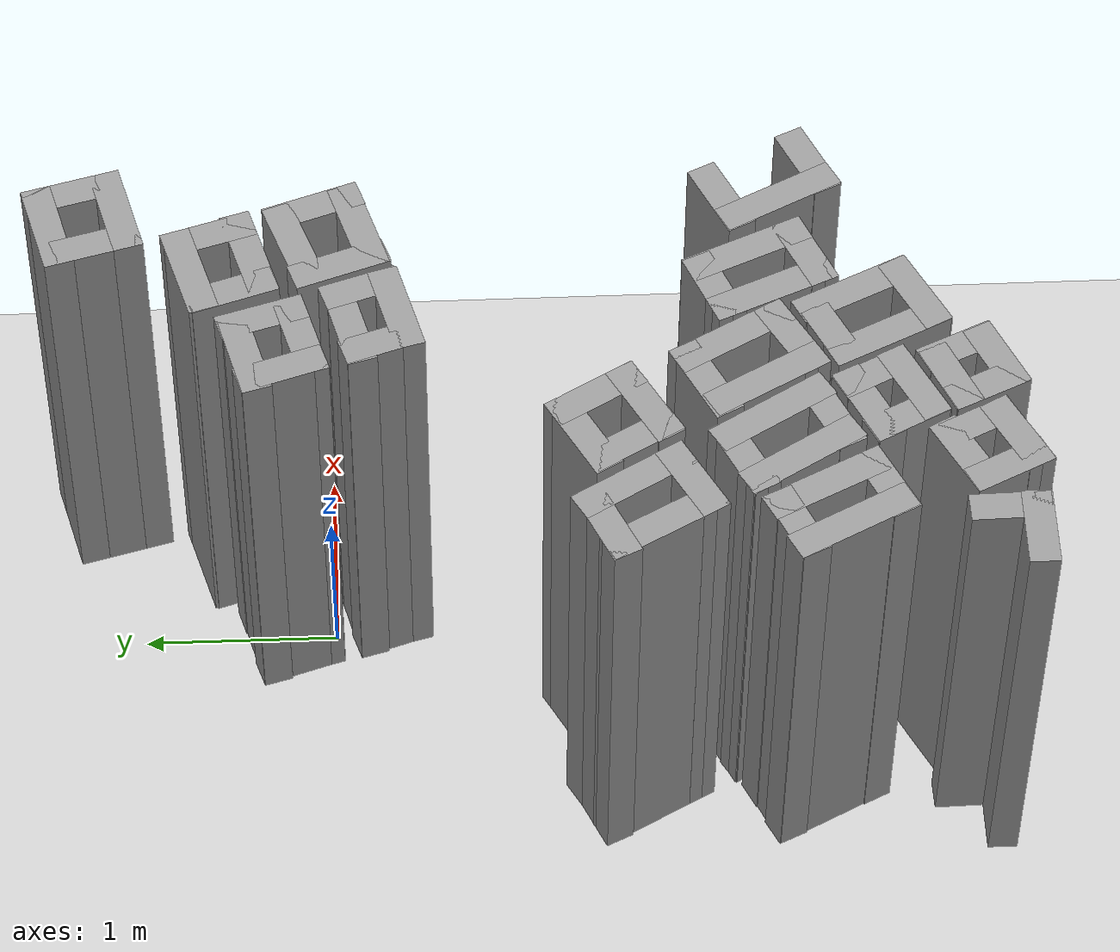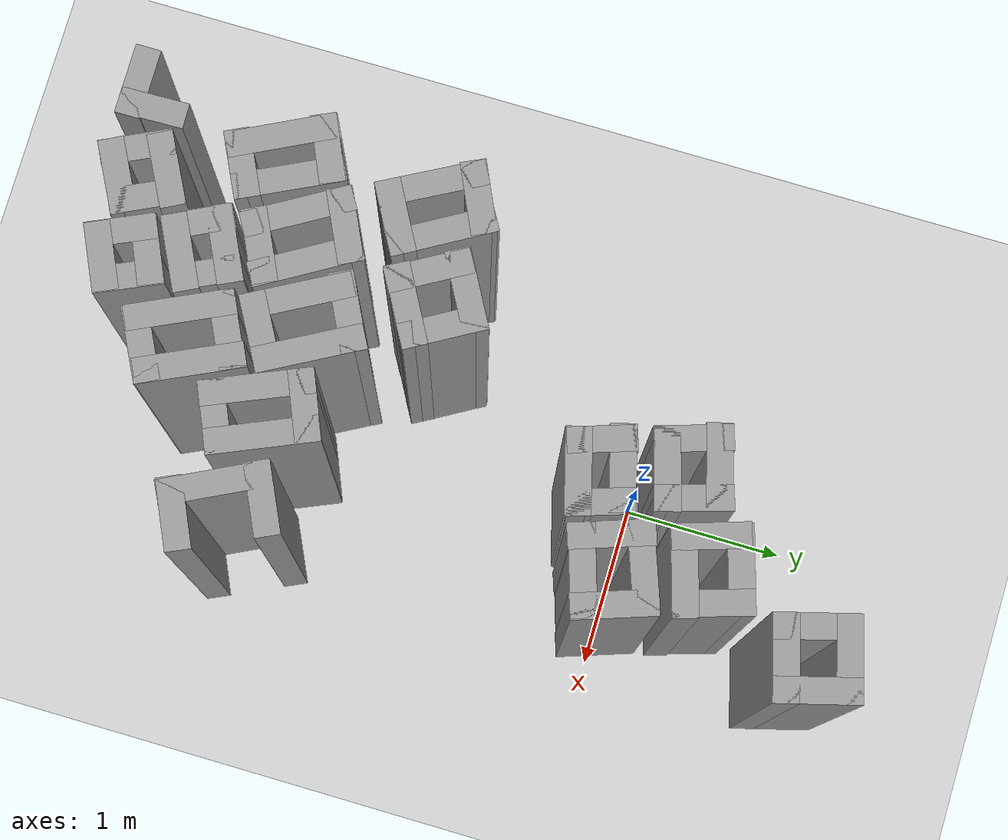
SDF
<sdf version="1.7">
 <world name="default">
  <include><uri>model://sun</uri></include>
  <include><uri>model://ground_plane</uri></include>
  <model name="iitj">
   <pose>-3.03973 -1.21048 0 0 -0 0</pose>
   <link name="Wall_212">
    <collision name="Wall_212_Collision">
     <geometry><box><size>0.648903 0.15 2.5</size></box></geometry>
     <pose>0 0 1.25 0 -0 0</pose>
    </collision>
    <visual name="Wall_212_Visual">
     <pose>0 0 1.25 0 -0 0</pose>
     <geometry><box><size>0.648903 0.15 2.5</size></box></geometry>
     <material>
      <script><uri>file://media/materials/scripts/gazebo.material</uri><name>Gazebo/Grey</name></script>
      <ambient>1 1 1 1</ambient>
     </material>
     <meta><layer>0</layer></meta>
    </visual>
    <pose>1.88601 -1.28038 0 0 -0 -1.10363</pose>
   </link>
   <link name="Wall_213">
    <collision name="Wall_213_Collision">
     <geometry><box><size>0.402633 0.15 2.5</size></box></geometry>
     <pose>0 0 1.25 0 -0 0</pose>
    </collision>
    <visual name="Wall_213_Visual">
     <pose>0 0 1.25 0 -0 0</pose>
     <geometry><box><size>0.402633 0.15 2.5</size></box></geometry>
     <material>
      <script><uri>file://media/materials/scripts/gazebo.material</uri><name>Gazebo/Grey</name></script>
      <ambient>1 1 1 1</ambient>
     </material>
     <meta><layer>0</layer></meta>
    </visual>
    <pose>2.10732 -1.45252 0 0 -0 0.452359</pose>
   </link>
   <link name="Wall_214">
    <collision name="Wall_214_Collision">
     <geometry><box><size>0.644621 0.15 2.5</size></box></geometry>
     <pose>0 0 1.25 0 -0 0</pose>
    </collision>
    <visual name="Wall_214_Visual">
     <pose>0 0 1.25 0 -0 0</pose>
     <geometry><box><size>0.644621 0.15 2.5</size></box></geometry>
     <material>
      <script><uri>file://media/materials/scripts/gazebo.material</uri><name>Gazebo/Grey</name></script>
      <ambient>1 1 1 1</ambient>
     </material>
     <meta><layer>0</layer></meta>
    </visual>
    <pose>2.11182 -1.17538 0 0 -0 2.02774</pose>
   </link>
   <link name="Wall_215">
    <collision name="Wall_215_Collision">
     <geometry><box><size>0.401634 0.15 2.5</size></box></geometry>
     <pose>0 0 1.25 0 -0 0</pose>
    </collision>
    <visual name="Wall_215_Visual">
     <pose>0 0 1.25 0 -0 0</pose>
     <geometry><box><size>0.401634 0.15 2.5</size></box></geometry>
     <material>
      <script><uri>file://media/materials/scripts/gazebo.material</uri><name>Gazebo/Grey</name></script>
      <ambient>1 1 1 1</ambient>
     </material>
     <meta><layer>0</layer></meta>
    </visual>
    <pose>1.88819 -1.01365 0 0 -0 -2.71458</pose>
   </link>
   <link name="Wall_217">
    <collision name="Wall_217_Collision">
     <geometry><box><size>0.648669 0.15 2.5</size></box></geometry>
     <pose>0 0 1.25 0 -0 0</pose>
    </collision>
    <visual name="Wall_217_Visual">
     <pose>0 0 1.25 0 -0 0</pose>
     <geometry><box><size>0.648669 0.15 2.5</size></box></geometry>
     <material>
      <script><uri>file://media/materials/scripts/gazebo.material</uri><name>Gazebo/Grey</name></script>
      <ambient>1 1 1 1</ambient>
     </material>
     <meta><layer>0</layer></meta>
    </visual>
    <pose>2.28325 -1.06908 0 0 -0 -1.035</pose>
   </link>
   <link name="Wall_218">
    <collision name="Wall_218_Collision">
     <geometry><box><size>0.43838 0.15 2.5</size></box></geometry>
     <pose>0 0 1.25 0 -0 0</pose>
    </collision>
    <visual name="Wall_218_Visual">
     <pose>0 0 1.25 0 -0 0</pose>
     <geometry><box><size>0.43838 0.15 2.5</size></box></geometry>
     <material>
      <script><uri>file://media/materials/scripts/gazebo.material</uri><name>Gazebo/Grey</name></script>
      <ambient>1 1 1 1</ambient>
     </material>
     <meta><layer>0</layer></meta>
    </visual>
    <pose>2.53122 -1.22111 0 0 -0 0.447258</pose>
   </link>
   <link name="Wall_219">
    <collision name="Wall_219_Collision">
     <geometry><box><size>0.648669 0.15 2.5</size></box></geometry>
     <pose>0 0 1.25 0 -0 0</pose>
    </collision>
    <visual name="Wall_219_Visual">
     <pose>0 0 1.25 0 -0 0</pose>
     <geometry><box><size>0.648669 0.15 2.5</size></box></geometry>
     <material>
      <script><uri>file://media/materials/scripts/gazebo.material</uri><name>Gazebo/Grey</name></script>
      <ambient>1 1 1 1</ambient>
     </material>
     <meta><layer>0</layer></meta>
    </visual>
    <pose>2.54326 -0.94436 0 0 -0 2.1066</pose>
   </link>
   <link name="Wall_220">
    <collision name="Wall_220_Collision">
     <geometry><box><size>0.43838 0.15 2.5</size></box></geometry>
     <pose>0 0 1.25 0 -0 0</pose>
    </collision>
    <visual name="Wall_220_Visual">
     <pose>0 0 1.25 0 -0 0</pose>
     <geometry><box><size>0.43838 0.15 2.5</size></box></geometry>
     <material>
      <script><uri>file://media/materials/scripts/gazebo.material</uri><name>Gazebo/Grey</name></script>
      <ambient>1 1 1 1</ambient>
     </material>
     <meta><layer>0</layer></meta>
    </visual>
    <pose>2.28596 -0.792329 0 0 -0 -2.69434</pose>
   </link>
   <link name="Wall_222">
    <collision name="Wall_222_Collision">
     <geometry><box><size>0.640461 0.15 2.5</size></box></geometry>
     <pose>0 0 1.25 0 -0 0</pose>
    </collision>
    <visual name="Wall_222_Visual">
     <pose>0 0 1.25 0 -0 0</pose>
     <geometry><box><size>0.640461 0.15 2.5</size></box></geometry>
     <material>
      <script><uri>file://media/materials/scripts/gazebo.material</uri><name>Gazebo/Grey</name></script>
      <ambient>1 1 1 1</ambient>
     </material>
     <meta><layer>0</layer></meta>
    </visual>
    <pose>2.74712 -0.931314 0 0 -0 -1.06854</pose>
   </link>
   <link name="Wall_223">
    <collision name="Wall_223_Collision">
     <geometry><box><size>0.456014 0.15 2.5</size></box></geometry>
     <pose>0 0 1.25 0 -0 0</pose>
    </collision>
    <visual name="Wall_223_Visual">
     <pose>0 0 1.25 0 -0 0</pose>
     <geometry><box><size>0.456014 0.15 2.5</size></box></geometry>
     <material>
      <script><uri>file://media/materials/scripts/gazebo.material</uri><name>Gazebo/Grey</name></script>
      <ambient>1 1 1 1</ambient>
     </material>
     <meta><layer>0</layer></meta>
    </visual>
    <pose>2.99878 -1.07168 0 0 -0 0.509162</pose>
   </link>
   <link name="Wall_224">
    <collision name="Wall_224_Collision">
     <geometry><box><size>0.640461 0.15 2.5</size></box></geometry>
     <pose>0 0 1.25 0 -0 0</pose>
    </collision>
    <visual name="Wall_224_Visual">
     <pose>0 0 1.25 0 -0 0</pose>
     <geometry><box><size>0.640461 0.15 2.5</size></box></geometry>
     <material>
      <script><uri>file://media/materials/scripts/gazebo.material</uri><name>Gazebo/Grey</name></script>
      <ambient>1 1 1 1</ambient>
     </material>
     <meta><layer>0</layer></meta>
    </visual>
    <pose>3.01432 -0.782149 0 0 -0 2.07305</pose>
   </link>
   <link name="Wall_225">
    <collision name="Wall_225_Collision">
     <geometry><box><size>0.465335 0.15 2.5</size></box></geometry>
     <pose>0 0 1.25 0 -0 0</pose>
    </collision>
    <visual name="Wall_225_Visual">
     <pose>0 0 1.25 0 -0 0</pose>
     <geometry><box><size>0.465335 0.15 2.5</size></box></geometry>
     <material>
      <script><uri>file://media/materials/scripts/gazebo.material</uri><name>Gazebo/Grey</name></script>
      <ambient>1 1 1 1</ambient>
     </material>
     <meta><layer>0</layer></meta>
    </visual>
    <pose>2.75548 -0.638195 0 0 -0 -2.67454</pose>
   </link>
   <link name="Wall_234">
    <collision name="Wall_234_Collision">
     <geometry><box><size>0.636183 0.15 2.5</size></box></geometry>
     <pose>0 0 1.25 0 -0 0</pose>
    </collision>
    <visual name="Wall_234_Visual">
     <pose>0 0 1.25 0 -0 0</pose>
     <geometry><box><size>0.636183 0.15 2.5</size></box></geometry>
     <material>
      <script><uri>file://media/materials/scripts/gazebo.material</uri><name>Gazebo/Grey</name></script>
      <ambient>1 1 1 1</ambient>
     </material>
     <meta><layer>0</layer></meta>
    </visual>
    <pose>1.91748 -0.392397 0 0 -0 2.06742</pose>
   </link>
   <link name="Wall_235">
    <collision name="Wall_235_Collision">
     <geometry><box><size>0.428247 0.15 2.5</size></box></geometry>
     <pose>0 0 1.25 0 -0 0</pose>
    </collision>
    <visual name="Wall_235_Visual">
     <pose>0 0 1.25 0 -0 0</pose>
     <geometry><box><size>0.428247 0.15 2.5</size></box></geometry>
     <material>
      <script><uri>file://media/materials/scripts/gazebo.material</uri><name>Gazebo/Grey</name></script>
      <ambient>1 1 1 1</ambient>
     </material>
     <meta><layer>0</layer></meta>
    </visual>
    <pose>1.92063 -0.120136 0 0 -0 0.434262</pose>
   </link>
   <link name="Wall_236">
    <collision name="Wall_236_Collision">
     <geometry><box><size>0.627085 0.15 2.5</size></box></geometry>
     <pose>0 0 1.25 0 -0 0</pose>
    </collision>
    <visual name="Wall_236_Visual">
     <pose>0 0 1.25 0 -0 0</pose>
     <geometry><box><size>0.627085 0.15 2.5</size></box></geometry>
     <material>
      <script><uri>file://media/materials/scripts/gazebo.material</uri><name>Gazebo/Grey</name></script>
      <ambient>1 1 1 1</ambient>
     </material>
     <meta><layer>0</layer></meta>
    </visual>
    <pose>2.16628 -0.260845 0 0 -0 -1.04636</pose>
   </link>
   <link name="Wall_237">
    <collision name="Wall_237_Collision">
     <geometry><box><size>0.438062 0.15 2.5</size></box></geometry>
     <pose>0 0 1.25 0 -0 0</pose>
    </collision>
    <visual name="Wall_237_Visual">
     <pose>0 0 1.25 0 -0 0</pose>
     <geometry><box><size>0.438062 0.15 2.5</size></box></geometry>
     <material>
      <script><uri>file://media/materials/scripts/gazebo.material</uri><name>Gazebo/Grey</name></script>
      <ambient>1 1 1 1</ambient>
     </material>
     <meta><layer>0</layer></meta>
    </visual>
    <pose>2.15952 -0.536726 0 0 -0 -2.63886</pose>
   </link>
   <link name="Wall_239">
    <collision name="Wall_239_Collision">
     <geometry><box><size>0.5 0.15 2.5</size></box></geometry>
     <pose>0 0 1.25 0 -0 0</pose>
    </collision>
    <visual name="Wall_239_Visual">
     <pose>0 0 1.25 0 -0 0</pose>
     <geometry><box><size>0.5 0.15 2.5</size></box></geometry>
     <material>
      <script><uri>file://media/materials/scripts/gazebo.material</uri><name>Gazebo/Grey</name></script>
      <ambient>1 1 1 1</ambient>
     </material>
     <meta><layer>0</layer></meta>
    </visual>
    <pose>2.40146 -0.266066 0 0 -0 -1.0472</pose>
   </link>
   <link name="Wall_240">
    <collision name="Wall_240_Collision">
     <geometry><box><size>0.486684 0.15 2.5</size></box></geometry>
     <pose>0 0 1.25 0 -0 0</pose>
    </collision>
    <visual name="Wall_240_Visual">
     <pose>0 0 1.25 0 -0 0</pose>
     <geometry><box><size>0.486684 0.15 2.5</size></box></geometry>
     <material>
      <script><uri>file://media/materials/scripts/gazebo.material</uri><name>Gazebo/Grey</name></script>
      <ambient>1 1 1 1</ambient>
     </material>
     <meta><layer>0</layer></meta>
    </visual>
    <pose>2.6281 -0.336331 0 0 -0 0.503946</pose>
   </link>
   <link name="Wall_241">
    <collision name="Wall_241_Collision">
     <geometry><box><size>0.5 0.15 2.5</size></box></geometry>
     <pose>0 0 1.25 0 -0 0</pose>
    </collision>
    <visual name="Wall_241_Visual">
     <pose>0 0 1.25 0 -0 0</pose>
     <geometry><box><size>0.5 0.15 2.5</size></box></geometry>
     <material>
      <script><uri>file://media/materials/scripts/gazebo.material</uri><name>Gazebo/Grey</name></script>
      <ambient>1 1 1 1</ambient>
     </material>
     <meta><layer>0</layer></meta>
    </visual>
    <pose>2.68801 -0.103487 0 0 -0 2.0944</pose>
   </link>
   <link name="Wall_242">
    <collision name="Wall_242_Collision">
     <geometry><box><size>0.486684 0.15 2.5</size></box></geometry>
     <pose>0 0 1.25 0 -0 0</pose>
    </collision>
    <visual name="Wall_242_Visual">
     <pose>0 0 1.25 0 -0 0</pose>
     <geometry><box><size>0.486684 0.15 2.5</size></box></geometry>
     <material>
      <script><uri>file://media/materials/scripts/gazebo.material</uri><name>Gazebo/Grey</name></script>
      <ambient>1 1 1 1</ambient>
     </material>
     <meta><layer>0</layer></meta>
    </visual>
    <pose>2.4531 -0.033222 0 0 -0 -2.63765</pose>
   </link>
   <link name="Wall_395">
    <collision name="Wall_395_Collision">
     <geometry><box><size>0.446457 0.15 2.5</size></box></geometry>
     <pose>0 0 1.25 0 -0 0</pose>
    </collision>
    <visual name="Wall_395_Visual">
     <pose>0 0 1.25 0 -0 0</pose>
     <geometry><box><size>0.446457 0.15 2.5</size></box></geometry>
     <material>
      <script><uri>file://media/materials/scripts/gazebo.material</uri><name>Gazebo/Grey</name></script>
      <ambient>1 1 1 1</ambient>
     </material>
     <meta><layer>0</layer></meta>
    </visual>
    <pose>2.89962 1.40822 0 0 -0 -1.25857</pose>
   </link>
   <link name="Wall_396">
    <collision name="Wall_396_Collision">
     <geometry><box><size>0.47935 0.15 2.5</size></box></geometry>
     <pose>0 0 1.25 0 -0 0</pose>
    </collision>
    <visual name="Wall_396_Visual">
     <pose>0 0 1.25 0 -0 0</pose>
     <geometry><box><size>0.47935 0.15 2.5</size></box></geometry>
     <material>
      <script><uri>file://media/materials/scripts/gazebo.material</uri><name>Gazebo/Grey</name></script>
      <ambient>1 1 1 1</ambient>
     </material>
     <meta><layer>0</layer></meta>
    </visual>
    <pose>3.10354 1.31224 0 0 -0 0.277289</pose>
   </link>
   <link name="Wall_397">
    <collision name="Wall_397_Collision">
     <geometry><box><size>0.444384 0.15 2.5</size></box></geometry>
     <pose>0 0 1.25 0 -0 0</pose>
    </collision>
    <visual name="Wall_397_Visual">
     <pose>0 0 1.25 0 -0 0</pose>
     <geometry><box><size>0.444384 0.15 2.5</size></box></geometry>
     <material>
      <script><uri>file://media/materials/scripts/gazebo.material</uri><name>Gazebo/Grey</name></script>
      <ambient>1 1 1 1</ambient>
     </material>
     <meta><layer>0</layer></meta>
    </visual>
    <pose>3.21989 1.49838 0 0 -0 1.8604</pose>
   </link>
   <link name="Wall_398">
    <collision name="Wall_398_Collision">
     <geometry><box><size>0.492826 0.15 2.5</size></box></geometry>
     <pose>0 0 1.25 0 -0 0</pose>
    </collision>
    <visual name="Wall_398_Visual">
     <pose>0 0 1.25 0 -0 0</pose>
     <geometry><box><size>0.492826 0.15 2.5</size></box></geometry>
     <material>
      <script><uri>file://media/materials/scripts/gazebo.material</uri><name>Gazebo/Grey</name></script>
      <ambient>1 1 1 1</ambient>
     </material>
     <meta><layer>0</layer></meta>
    </visual>
    <pose>3.01248 1.58737 0 0 -0 -2.87547</pose>
   </link>
   <link name="Wall_401">
    <collision name="Wall_401_Collision">
     <geometry><box><size>0.395414 0.15 2.5</size></box></geometry>
     <pose>0 0 1.25 0 -0 0</pose>
    </collision>
    <visual name="Wall_401_Visual">
     <pose>0 0 1.25 0 -0 0</pose>
     <geometry><box><size>0.395414 0.15 2.5</size></box></geometry>
     <material>
      <script><uri>file://media/materials/scripts/gazebo.material</uri><name>Gazebo/Grey</name></script>
      <ambient>1 1 1 1</ambient>
     </material>
     <meta><layer>0</layer></meta>
    </visual>
    <pose>3.04627 0.922097 0 0 -0 -1.25338</pose>
   </link>
   <link name="Wall_402">
    <collision name="Wall_402_Collision">
     <geometry><box><size>0.5 0.15 2.5</size></box></geometry>
     <pose>0 0 1.25 0 -0 0</pose>
    </collision>
    <visual name="Wall_402_Visual">
     <pose>0 0 1.25 0 -0 0</pose>
     <geometry><box><size>0.5 0.15 2.5</size></box></geometry>
     <material>
      <script><uri>file://media/materials/scripts/gazebo.material</uri><name>Gazebo/Grey</name></script>
      <ambient>1 1 1 1</ambient>
     </material>
     <meta><layer>0</layer></meta>
    </visual>
    <pose>3.25361 0.843818 0 0 -0 0.261799</pose>
   </link>
   <link name="Wall_403">
    <collision name="Wall_403_Collision">
     <geometry><box><size>0.395414 0.15 2.5</size></box></geometry>
     <pose>0 0 1.25 0 -0 0</pose>
    </collision>
    <visual name="Wall_403_Visual">
     <pose>0 0 1.25 0 -0 0</pose>
     <geometry><box><size>0.395414 0.15 2.5</size></box></geometry>
     <material>
      <script><uri>file://media/materials/scripts/gazebo.material</uri><name>Gazebo/Grey</name></script>
      <ambient>1 1 1 1</ambient>
     </material>
     <meta><layer>0</layer></meta>
    </visual>
    <pose>3.38435 1.01268 0 0 -0 1.88821</pose>
   </link>
   <link name="Wall_404">
    <collision name="Wall_404_Collision">
     <geometry><box><size>0.5 0.15 2.5</size></box></geometry>
     <pose>0 0 1.25 0 -0 0</pose>
    </collision>
    <visual name="Wall_404_Visual">
     <pose>0 0 1.25 0 -0 0</pose>
     <geometry><box><size>0.5 0.15 2.5</size></box></geometry>
     <material>
      <script><uri>file://media/materials/scripts/gazebo.material</uri><name>Gazebo/Grey</name></script>
      <ambient>1 1 1 1</ambient>
     </material>
     <meta><layer>0</layer></meta>
    </visual>
    <pose>3.17002 1.07697 0 0 -0 -2.87979</pose>
   </link>
   <link name="Wall_406">
    <collision name="Wall_406_Collision">
     <geometry><box><size>0.492752 0.15 2.5</size></box></geometry>
     <pose>0 0 1.25 0 -0 0</pose>
    </collision>
    <visual name="Wall_406_Visual">
     <pose>0 0 1.25 0 -0 0</pose>
     <geometry><box><size>0.492752 0.15 2.5</size></box></geometry>
     <material>
      <script><uri>file://media/materials/scripts/gazebo.material</uri><name>Gazebo/Grey</name></script>
      <ambient>1 1 1 1</ambient>
     </material>
     <meta><layer>0</layer></meta>
    </visual>
    <pose>3.53974 1.11678 0 0 -0 1.90235</pose>
   </link>
   <link name="Wall_407">
    <collision name="Wall_407_Collision">
     <geometry><box><size>0.527821 0.15 2.5</size></box></geometry>
     <pose>0 0 1.25 0 -0 0</pose>
    </collision>
    <visual name="Wall_407_Visual">
     <pose>0 0 1.25 0 -0 0</pose>
     <geometry><box><size>0.527821 0.15 2.5</size></box></geometry>
     <material>
      <script><uri>file://media/materials/scripts/gazebo.material</uri><name>Gazebo/Grey</name></script>
      <ambient>1 1 1 1</ambient>
     </material>
     <meta><layer>0</layer></meta>
    </visual>
    <pose>3.66881 1.33548 0 0 -0 0.343692</pose>
   </link>
   <link name="Wall_408">
    <collision name="Wall_408_Collision">
     <geometry><box><size>0.492752 0.15 2.5</size></box></geometry>
     <pose>0 0 1.25 0 -0 0</pose>
    </collision>
    <visual name="Wall_408_Visual">
     <pose>0 0 1.25 0 -0 0</pose>
     <geometry><box><size>0.492752 0.15 2.5</size></box></geometry>
     <material>
      <script><uri>file://media/materials/scripts/gazebo.material</uri><name>Gazebo/Grey</name></script>
      <ambient>1 1 1 1</ambient>
     </material>
     <meta><layer>0</layer></meta>
    </visual>
    <pose>3.90946 1.2371 0 0 -0 -1.23924</pose>
   </link>
   <link name="Wall_409">
    <collision name="Wall_409_Collision">
     <geometry><box><size>0.530011 0.15 2.5</size></box></geometry>
     <pose>0 0 1.25 0 -0 0</pose>
    </collision>
    <visual name="Wall_409_Visual">
     <pose>0 0 1.25 0 -0 0</pose>
     <geometry><box><size>0.530011 0.15 2.5</size></box></geometry>
     <material>
      <script><uri>file://media/materials/scripts/gazebo.material</uri><name>Gazebo/Grey</name></script>
      <ambient>1 1 1 1</ambient>
     </material>
     <meta><layer>0</layer></meta>
    </visual>
    <pose>3.77689 1.01839 0 0 -0 -2.83878</pose>
   </link>
   <link name="Wall_411">
    <collision name="Wall_411_Collision">
     <geometry><box><size>0.446303 0.15 2.5</size></box></geometry>
     <pose>0 0 1.25 0 -0 0</pose>
    </collision>
    <visual name="Wall_411_Visual">
     <pose>0 0 1.25 0 -0 0</pose>
     <geometry><box><size>0.446303 0.15 2.5</size></box></geometry>
     <material>
      <script><uri>file://media/materials/scripts/gazebo.material</uri><name>Gazebo/Grey</name></script>
      <ambient>1 1 1 1</ambient>
     </material>
     <meta><layer>0</layer></meta>
    </visual>
    <pose>3.39601 1.64605 0 0 -0 -1.2601</pose>
   </link>
   <link name="Wall_412">
    <collision name="Wall_412_Collision">
     <geometry><box><size>0.517267 0.15 2.5</size></box></geometry>
     <pose>0 0 1.25 0 -0 0</pose>
    </collision>
    <visual name="Wall_412_Visual">
     <pose>0 0 1.25 0 -0 0</pose>
     <geometry><box><size>0.517267 0.15 2.5</size></box></geometry>
     <material>
      <script><uri>file://media/materials/scripts/gazebo.material</uri><name>Gazebo/Grey</name></script>
      <ambient>1 1 1 1</ambient>
     </material>
     <meta><layer>0</layer></meta>
    </visual>
    <pose>3.62433 1.55728 0 0 -0 0.288737</pose>
   </link>
   <link name="Wall_413">
    <collision name="Wall_413_Collision">
     <geometry><box><size>0.459652 0.15 2.5</size></box></geometry>
     <pose>0 0 1.25 0 -0 0</pose>
    </collision>
    <visual name="Wall_413_Visual">
     <pose>0 0 1.25 0 -0 0</pose>
     <geometry><box><size>0.459652 0.15 2.5</size></box></geometry>
     <material>
      <script><uri>file://media/materials/scripts/gazebo.material</uri><name>Gazebo/Grey</name></script>
      <ambient>1 1 1 1</ambient>
     </material>
     <meta><layer>0</layer></meta>
    </visual>
    <pose>3.74807 1.75762 0 0 -0 1.86768</pose>
   </link>
   <link name="Wall_414">
    <collision name="Wall_414_Collision">
     <geometry><box><size>0.517267 0.15 2.5</size></box></geometry>
     <pose>0 0 1.25 0 -0 0</pose>
    </collision>
    <visual name="Wall_414_Visual">
     <pose>0 0 1.25 0 -0 0</pose>
     <geometry><box><size>0.517267 0.15 2.5</size></box></geometry>
     <material>
      <script><uri>file://media/materials/scripts/gazebo.material</uri><name>Gazebo/Grey</name></script>
      <ambient>1 1 1 1</ambient>
     </material>
     <meta><layer>0</layer></meta>
    </visual>
    <pose>3.52675 1.85338 0 0 -0 -2.85286</pose>
   </link>
   <link name="Wall_418">
    <collision name="Wall_418_Collision">
     <geometry><box><size>0.5 0.15 2.5</size></box></geometry>
     <pose>0 0 1.25 0 -0 0</pose>
    </collision>
    <visual name="Wall_418_Visual">
     <pose>0 0 1.25 0 -0 0</pose>
     <geometry><box><size>0.5 0.15 2.5</size></box></geometry>
     <material>
      <script><uri>file://media/materials/scripts/gazebo.material</uri><name>Gazebo/Grey</name></script>
      <ambient>1 1 1 1</ambient>
     </material>
     <meta><layer>0</layer></meta>
    </visual>
    <pose>3.71018 2.3387 0 0 -0 1.8326</pose>
   </link>
   <link name="Wall_419">
    <collision name="Wall_419_Collision">
     <geometry><box><size>0.5 0.15 2.5</size></box></geometry>
     <pose>0 0 1.25 0 -0 0</pose>
    </collision>
    <visual name="Wall_419_Visual">
     <pose>0 0 1.25 0 -0 0</pose>
     <geometry><box><size>0.5 0.15 2.5</size></box></geometry>
     <material>
      <script><uri>file://media/materials/scripts/gazebo.material</uri><name>Gazebo/Grey</name></script>
      <ambient>1 1 1 1</ambient>
     </material>
     <meta><layer>0</layer></meta>
    </visual>
    <pose>3.83392 2.55303 0 0 -0 0.261799</pose>
   </link>
   <link name="Wall_420">
    <collision name="Wall_420_Collision">
     <geometry><box><size>0.5 0.15 2.5</size></box></geometry>
     <pose>0 0 1.25 0 -0 0</pose>
    </collision>
    <visual name="Wall_420_Visual">
     <pose>0 0 1.25 0 -0 0</pose>
     <geometry><box><size>0.5 0.15 2.5</size></box></geometry>
     <material>
      <script><uri>file://media/materials/scripts/gazebo.material</uri><name>Gazebo/Grey</name></script>
      <ambient>1 1 1 1</ambient>
     </material>
     <meta><layer>0</layer></meta>
    </visual>
    <pose>4.04825 2.42929 0 0 -0 -1.309</pose>
   </link>
   <link name="Wall_421">
    <collision name="Wall_421_Collision">
     <geometry><box><size>0.5 0.15 2.5</size></box></geometry>
     <pose>0 0 1.25 0 -0 0</pose>
    </collision>
    <visual name="Wall_421_Visual">
     <pose>0 0 1.25 0 -0 0</pose>
     <geometry><box><size>0.5 0.15 2.5</size></box></geometry>
     <material>
      <script><uri>file://media/materials/scripts/gazebo.material</uri><name>Gazebo/Grey</name></script>
      <ambient>1 1 1 1</ambient>
     </material>
     <meta><layer>0</layer></meta>
    </visual>
    <pose>3.92451 2.21495 0 0 -0 -2.87979</pose>
   </link>
   <link name="Wall_423">
    <collision name="Wall_423_Collision">
     <geometry><box><size>0.42414 0.15 2.5</size></box></geometry>
     <pose>0 0 1.25 0 -0 0</pose>
    </collision>
    <visual name="Wall_423_Visual">
     <pose>0 0 1.25 0 -0 0</pose>
     <geometry><box><size>0.42414 0.15 2.5</size></box></geometry>
     <material>
      <script><uri>file://media/materials/scripts/gazebo.material</uri><name>Gazebo/Grey</name></script>
      <ambient>1 1 1 1</ambient>
     </material>
     <meta><layer>0</layer></meta>
    </visual>
    <pose>2.18511 -2.04686 0 0 -0 2.01943</pose>
   </link>
   <link name="Wall_424">
    <collision name="Wall_424_Collision">
     <geometry><box><size>0.436701 0.15 2.5</size></box></geometry>
     <pose>0 0 1.25 0 -0 0</pose>
    </collision>
    <visual name="Wall_424_Visual">
     <pose>0 0 1.25 0 -0 0</pose>
     <geometry><box><size>0.436701 0.15 2.5</size></box></geometry>
     <material>
      <script><uri>file://media/materials/scripts/gazebo.material</uri><name>Gazebo/Grey</name></script>
      <ambient>1 1 1 1</ambient>
     </material>
     <meta><layer>0</layer></meta>
    </visual>
    <pose>2.25968 -1.84988 0 0 -0 0.482102</pose>
   </link>
   <link name="Wall_425">
    <collision name="Wall_425_Collision">
     <geometry><box><size>0.42414 0.15 2.5</size></box></geometry>
     <pose>0 0 1.25 0 -0 0</pose>
    </collision>
    <visual name="Wall_425_Visual">
     <pose>0 0 1.25 0 -0 0</pose>
     <geometry><box><size>0.42414 0.15 2.5</size></box></geometry>
     <material>
      <script><uri>file://media/materials/scripts/gazebo.material</uri><name>Gazebo/Grey</name></script>
      <ambient>1 1 1 1</ambient>
     </material>
     <meta><layer>0</layer></meta>
    </visual>
    <pose>2.43913 -1.91393 0 0 -0 -1.12217</pose>
   </link>
   <link name="Wall_426">
    <collision name="Wall_426_Collision">
     <geometry><box><size>0.436701 0.15 2.5</size></box></geometry>
     <pose>0 0 1.25 0 -0 0</pose>
    </collision>
    <visual name="Wall_426_Visual">
     <pose>0 0 1.25 0 -0 0</pose>
     <geometry><box><size>0.436701 0.15 2.5</size></box></geometry>
     <material>
      <script><uri>file://media/materials/scripts/gazebo.material</uri><name>Gazebo/Grey</name></script>
      <ambient>1 1 1 1</ambient>
     </material>
     <meta><layer>0</layer></meta>
    </visual>
    <pose>2.37157 -2.1039 0 0 -0 -2.65949</pose>
   </link>
   <link name="Wall_428">
    <collision name="Wall_428_Collision">
     <geometry><box><size>0.402159 0.15 2.5</size></box></geometry>
     <pose>0 0 1.25 0 -0 0</pose>
    </collision>
    <visual name="Wall_428_Visual">
     <pose>0 0 1.25 0 -0 0</pose>
     <geometry><box><size>0.402159 0.15 2.5</size></box></geometry>
     <material>
      <script><uri>file://media/materials/scripts/gazebo.material</uri><name>Gazebo/Grey</name></script>
      <ambient>1 1 1 1</ambient>
     </material>
     <meta><layer>0</layer></meta>
    </visual>
    <pose>2.49685 -1.58214 0 0 -0 -1.11104</pose>
   </link>
   <link name="Wall_429">
    <collision name="Wall_429_Collision">
     <geometry><box><size>0.449198 0.15 2.5</size></box></geometry>
     <pose>0 0 1.25 0 -0 0</pose>
    </collision>
    <visual name="Wall_429_Visual">
     <pose>0 0 1.25 0 -0 0</pose>
     <geometry><box><size>0.449198 0.15 2.5</size></box></geometry>
     <material>
      <script><uri>file://media/materials/scripts/gazebo.material</uri><name>Gazebo/Grey</name></script>
      <ambient>1 1 1 1</ambient>
     </material>
     <meta><layer>0</layer></meta>
    </visual>
    <pose>2.69383 -1.63567 0 0 -0 0.460368</pose>
   </link>
   <link name="Wall_430">
    <collision name="Wall_430_Collision">
     <geometry><box><size>0.402159 0.15 2.5</size></box></geometry>
     <pose>0 0 1.25 0 -0 0</pose>
    </collision>
    <visual name="Wall_430_Visual">
     <pose>0 0 1.25 0 -0 0</pose>
     <geometry><box><size>0.402159 0.15 2.5</size></box></geometry>
     <material>
      <script><uri>file://media/materials/scripts/gazebo.material</uri><name>Gazebo/Grey</name></script>
      <ambient>1 1 1 1</ambient>
     </material>
     <meta><layer>0</layer></meta>
    </visual>
    <pose>2.7649 -1.45622 0 0 -0 2.03055</pose>
   </link>
   <link name="Wall_431">
    <collision name="Wall_431_Collision">
     <geometry><box><size>0.455496 0.15 2.5</size></box></geometry>
     <pose>0 0 1.25 0 -0 0</pose>
    </collision>
    <visual name="Wall_431_Visual">
     <pose>0 0 1.25 0 -0 0</pose>
     <geometry><box><size>0.455496 0.15 2.5</size></box></geometry>
     <material>
      <script><uri>file://media/materials/scripts/gazebo.material</uri><name>Gazebo/Grey</name></script>
      <ambient>1 1 1 1</ambient>
     </material>
     <meta><layer>0</layer></meta>
    </visual>
    <pose>2.57843 -1.4097 0 0 -0 -2.69142</pose>
   </link>
   <link name="Wall_434">
    <collision name="Wall_434_Collision">
     <geometry><box><size>0.413844 0.15 2.5</size></box></geometry>
     <pose>0 0 1.25 0 -0 0</pose>
    </collision>
    <visual name="Wall_434_Visual">
     <pose>0 0 1.25 0 -0 0</pose>
     <geometry><box><size>0.413844 0.15 2.5</size></box></geometry>
     <material>
      <script><uri>file://media/materials/scripts/gazebo.material</uri><name>Gazebo/Grey</name></script>
      <ambient>1 1 1 1</ambient>
     </material>
     <meta><layer>0</layer></meta>
    </visual>
    <pose>1.81755 -2.15658 0 0 -0 0.001702</pose>
   </link>
   <link name="Wall_435">
    <collision name="Wall_435_Collision">
     <geometry><box><size>0.392702 0.15 2.5</size></box></geometry>
     <pose>0 0 1.25 0 -0 0</pose>
    </collision>
    <visual name="Wall_435_Visual">
     <pose>0 0 1.25 0 -0 0</pose>
     <geometry><box><size>0.392702 0.15 2.5</size></box></geometry>
     <material>
      <script><uri>file://media/materials/scripts/gazebo.material</uri><name>Gazebo/Grey</name></script>
      <ambient>1 1 1 1</ambient>
     </material>
     <meta><layer>0</layer></meta>
    </visual>
    <pose>1.94129 -2.02973 0 0 -0 1.5945</pose>
   </link>
   <link name="Wall_438">
    <collision name="Wall_438_Collision">
     <geometry><box><size>0.406058 0.15 2.5</size></box></geometry>
     <pose>0 0 1.25 0 -0 0</pose>
    </collision>
    <visual name="Wall_438_Visual">
     <pose>0 0 1.25 0 -0 0</pose>
     <geometry><box><size>0.406058 0.15 2.5</size></box></geometry>
     <material>
      <script><uri>file://media/materials/scripts/gazebo.material</uri><name>Gazebo/Grey</name></script>
      <ambient>1 1 1 1</ambient>
     </material>
     <meta><layer>0</layer></meta>
    </visual>
    <pose>2.66754 -1.9865 0 0 -0 -1.14671</pose>
   </link>
   <link name="Wall_439">
    <collision name="Wall_439_Collision">
     <geometry><box><size>0.402039 0.15 2.5</size></box></geometry>
     <pose>0 0 1.25 0 -0 0</pose>
    </collision>
    <visual name="Wall_439_Visual">
     <pose>0 0 1.25 0 -0 0</pose>
     <geometry><box><size>0.402039 0.15 2.5</size></box></geometry>
     <material>
      <script><uri>file://media/materials/scripts/gazebo.material</uri><name>Gazebo/Grey</name></script>
      <ambient>1 1 1 1</ambient>
     </material>
     <meta><layer>0</layer></meta>
    </visual>
    <pose>2.83936 -2.05056 0 0 -0 0.431661</pose>
   </link>
   <link name="Wall_440">
    <collision name="Wall_440_Collision">
     <geometry><box><size>0.406258 0.15 2.5</size></box></geometry>
     <pose>0 0 1.25 0 -0 0</pose>
    </collision>
    <visual name="Wall_440_Visual">
     <pose>0 0 1.25 0 -0 0</pose>
     <geometry><box><size>0.406258 0.15 2.5</size></box></geometry>
     <material>
      <script><uri>file://media/materials/scripts/gazebo.material</uri><name>Gazebo/Grey</name></script>
      <ambient>1 1 1 1</ambient>
     </material>
     <meta><layer>0</layer></meta>
    </visual>
    <pose>2.90573 -1.87642 0 0 -0 1.99489</pose>
   </link>
   <link name="Wall_441">
    <collision name="Wall_441_Collision">
     <geometry><box><size>0.400135 0.15 2.5</size></box></geometry>
     <pose>0 0 1.25 0 -0 0</pose>
    </collision>
    <visual name="Wall_441_Visual">
     <pose>0 0 1.25 0 -0 0</pose>
     <geometry><box><size>0.400135 0.15 2.5</size></box></geometry>
     <material>
      <script><uri>file://media/materials/scripts/gazebo.material</uri><name>Gazebo/Grey</name></script>
      <ambient>1 1 1 1</ambient>
     </material>
     <meta><layer>0</layer></meta>
    </visual>
    <pose>2.73391 -1.81468 0 0 -0 -2.72677</pose>
   </link>
   <link name="Wall_443">
    <collision name="Wall_443_Collision">
     <geometry><box><size>0.631615 0.15 2.5</size></box></geometry>
     <pose>0 0 1.25 0 -0 0</pose>
    </collision>
    <visual name="Wall_443_Visual">
     <pose>0 0 1.25 0 -0 0</pose>
     <geometry><box><size>0.631615 0.15 2.5</size></box></geometry>
     <material>
      <script><uri>file://media/materials/scripts/gazebo.material</uri><name>Gazebo/Grey</name></script>
      <ambient>1 1 1 1</ambient>
     </material>
     <meta><layer>0</layer></meta>
    </visual>
    <pose>3.00684 -1.5353 0 0 -0 -1.12933</pose>
   </link>
   <link name="Wall_444">
    <collision name="Wall_444_Collision">
     <geometry><box><size>0.450255 0.15 2.5</size></box></geometry>
     <pose>0 0 1.25 0 -0 0</pose>
    </collision>
    <visual name="Wall_444_Visual">
     <pose>0 0 1.25 0 -0 0</pose>
     <geometry><box><size>0.450255 0.15 2.5</size></box></geometry>
     <material>
      <script><uri>file://media/materials/scripts/gazebo.material</uri><name>Gazebo/Grey</name></script>
      <ambient>1 1 1 1</ambient>
     </material>
     <meta><layer>0</layer></meta>
    </visual>
    <pose>3.24914 -1.69069 0 0 -0 0.46859</pose>
   </link>
   <link name="Wall_445">
    <collision name="Wall_445_Collision">
     <geometry><box><size>0.631615 0.15 2.5</size></box></geometry>
     <pose>0 0 1.25 0 -0 0</pose>
    </collision>
    <visual name="Wall_445_Visual">
     <pose>0 0 1.25 0 -0 0</pose>
     <geometry><box><size>0.631615 0.15 2.5</size></box></geometry>
     <material>
      <script><uri>file://media/materials/scripts/gazebo.material</uri><name>Gazebo/Grey</name></script>
      <ambient>1 1 1 1</ambient>
     </material>
     <meta><layer>0</layer></meta>
    </visual>
    <pose>3.2802 -1.39685 0 0 -0 2.01226</pose>
   </link>
   <link name="Wall_446">
    <collision name="Wall_446_Collision">
     <geometry><box><size>0.447825 0.15 2.5</size></box></geometry>
     <pose>0 0 1.25 0 -0 0</pose>
    </collision>
    <visual name="Wall_446_Visual">
     <pose>0 0 1.25 0 -0 0</pose>
     <geometry><box><size>0.447825 0.15 2.5</size></box></geometry>
     <material>
      <script><uri>file://media/materials/scripts/gazebo.material</uri><name>Gazebo/Grey</name></script>
      <ambient>1 1 1 1</ambient>
     </material>
     <meta><layer>0</layer></meta>
    </visual>
    <pose>3.04336 -1.25251 0 0 -0 -2.68938</pose>
   </link>
   <link name="Wall_453">
    <collision name="Wall_453_Collision">
     <geometry><box><size>0.65408 0.15 2.5</size></box></geometry>
     <pose>0 0 1.25 0 -0 0</pose>
    </collision>
    <visual name="Wall_453_Visual">
     <pose>0 0 1.25 0 -0 0</pose>
     <geometry><box><size>0.65408 0.15 2.5</size></box></geometry>
     <material>
      <script><uri>file://media/materials/scripts/gazebo.material</uri><name>Gazebo/Grey</name></script>
      <ambient>1 1 1 1</ambient>
     </material>
     <meta><layer>0</layer></meta>
    </visual>
    <pose>3.3034 -0.996144 0 0 -0 -1.16941</pose>
   </link>
   <link name="Wall_454">
    <collision name="Wall_454_Collision">
     <geometry><box><size>0.417856 0.15 2.5</size></box></geometry>
     <pose>0 0 1.25 0 -0 0</pose>
    </collision>
    <visual name="Wall_454_Visual">
     <pose>0 0 1.25 0 -0 0</pose>
     <geometry><box><size>0.417856 0.15 2.5</size></box></geometry>
     <material>
      <script><uri>file://media/materials/scripts/gazebo.material</uri><name>Gazebo/Grey</name></script>
      <ambient>1 1 1 1</ambient>
     </material>
     <meta><layer>0</layer></meta>
    </visual>
    <pose>3.52416 -1.17356 0 0 -0 0.41981</pose>
   </link>
   <link name="Wall_455">
    <collision name="Wall_455_Collision">
     <geometry><box><size>0.647355 0.15 2.5</size></box></geometry>
     <pose>0 0 1.25 0 -0 0</pose>
    </collision>
    <visual name="Wall_455_Visual">
     <pose>0 0 1.25 0 -0 0</pose>
     <geometry><box><size>0.647355 0.15 2.5</size></box></geometry>
     <material>
      <script><uri>file://media/materials/scripts/gazebo.material</uri><name>Gazebo/Grey</name></script>
      <ambient>1 1 1 1</ambient>
     </material>
     <meta><layer>0</layer></meta>
    </visual>
    <pose>3.55531 -0.890626 0 0 -0 1.97793</pose>
   </link>
   <link name="Wall_456">
    <collision name="Wall_456_Collision">
     <geometry><box><size>0.414959 0.15 2.5</size></box></geometry>
     <pose>0 0 1.25 0 -0 0</pose>
    </collision>
    <visual name="Wall_456_Visual">
     <pose>0 0 1.25 0 -0 0</pose>
     <geometry><box><size>0.414959 0.15 2.5</size></box></geometry>
     <material>
      <script><uri>file://media/materials/scripts/gazebo.material</uri><name>Gazebo/Grey</name></script>
      <ambient>1 1 1 1</ambient>
     </material>
     <meta><layer>0</layer></meta>
    </visual>
    <pose>3.32722 -0.713206 0 0 -0 -2.74699</pose>
   </link>
   <link name="Wall_458">
    <collision name="Wall_458_Collision">
     <geometry><box><size>0.642571 0.15 2.5</size></box></geometry>
     <pose>0 0 1.25 0 -0 0</pose>
    </collision>
    <visual name="Wall_458_Visual">
     <pose>0 0 1.25 0 -0 0</pose>
     <geometry><box><size>0.642571 0.15 2.5</size></box></geometry>
     <material>
      <script><uri>file://media/materials/scripts/gazebo.material</uri><name>Gazebo/Grey</name></script>
      <ambient>1 1 1 1</ambient>
     </material>
     <meta><layer>0</layer></meta>
    </visual>
    <pose>3.88541 -1.06495 0 0 -0 -1.1078</pose>
   </link>
   <link name="Wall_459">
    <collision name="Wall_459_Collision">
     <geometry><box><size>0.417426 0.15 2.5</size></box></geometry>
     <pose>0 0 1.25 0 -0 0</pose>
    </collision>
    <visual name="Wall_459_Visual">
     <pose>0 0 1.25 0 -0 0</pose>
     <geometry><box><size>0.417426 0.15 2.5</size></box></geometry>
     <material>
      <script><uri>file://media/materials/scripts/gazebo.material</uri><name>Gazebo/Grey</name></script>
      <ambient>1 1 1 1</ambient>
     </material>
     <meta><layer>0</layer></meta>
    </visual>
    <pose>4.10965 -1.2296 0 0 -0 0.429695</pose>
   </link>
   <link name="Wall_461">
    <collision name="Wall_461_Collision">
     <geometry><box><size>0.427145 0.15 2.5</size></box></geometry>
     <pose>0 0 1.25 0 -0 0</pose>
    </collision>
    <visual name="Wall_461_Visual">
     <pose>0 0 1.25 0 -0 0</pose>
     <geometry><box><size>0.427145 0.15 2.5</size></box></geometry>
     <material>
      <script><uri>file://media/materials/scripts/gazebo.material</uri><name>Gazebo/Grey</name></script>
      <ambient>1 1 1 1</ambient>
     </material>
     <meta><layer>0</layer></meta>
    </visual>
    <pose>3.89331 -0.785229 0 0 -0 -2.6989</pose>
   </link>
   <static>1</static>
  </model>
 </world>
</sdf>
